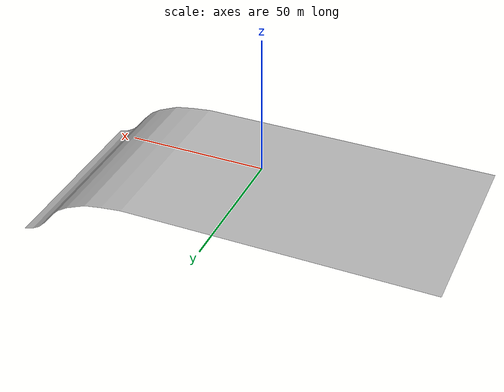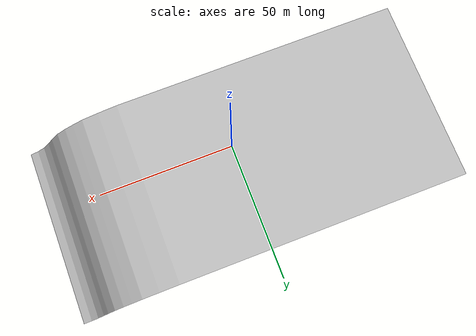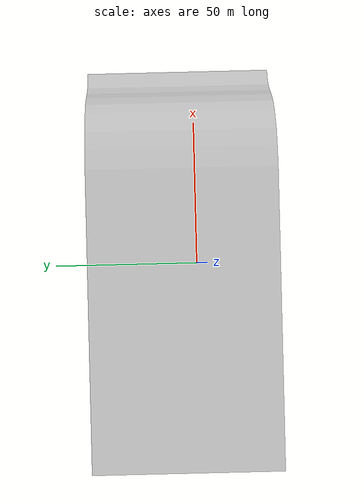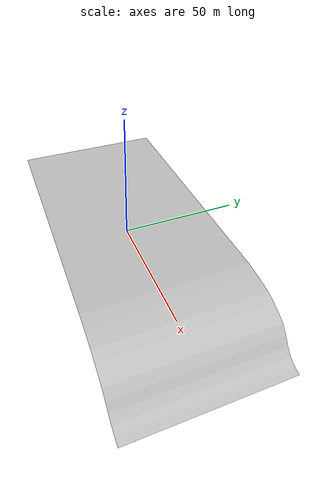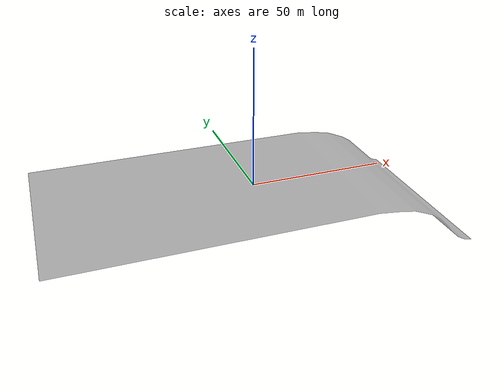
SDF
<?xml version="1.0" ?>
<sdf version="1.6">
  <world name="default">
    <include>
      <uri>model://demo_cross_river</uri>
      <pose>0 0 -1.5 0 0 0</pose>
    </include>
    <light type="directional" name="sun1">
      <pose>50 0 150 0 0 0</pose>
      <diffuse>1 1 1 1</diffuse>
      <specular>.1 .1 .1 1</specular>
      <direction>0.3 0.3 -1</direction>
      <cast_shadows>false</cast_shadows>
    </light>

  </world>
</sdf>

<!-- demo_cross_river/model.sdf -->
<sdf version="1.6">
    <model name="river_mountain">
        <static>true</static>
        <link name="link">
            <visual name="visual">
                <geometry>
                    <mesh>
                        <uri>
                            file://models/demo_cross_river/mesh/terrain.dae
                        </uri>
                        <scale>1 1 1</scale>
                    </mesh>
                </geometry>
            </visual>
            <collision name="coll">
                <geometry>
                    <mesh>
                        <uri>
                            file://models/demo_cross_river/mesh/terrain.dae
                        </uri>
                        <scale>1 1 1</scale>
                    </mesh>
                </geometry>
                <surface>
                    <friction>
                      <ode>
                        <mu>0.5</mu>  <!-- 摩擦系数 -->
                        <mu2>0.5</mu2>
                      </ode>
                    </friction>
                  </surface>
            </collision>
        </link>
    </model>
</sdf>
